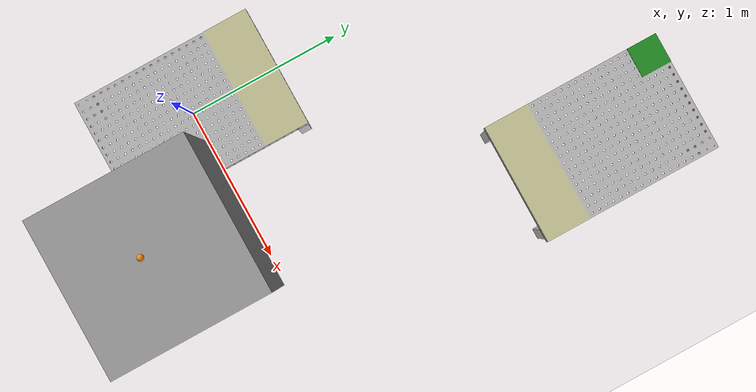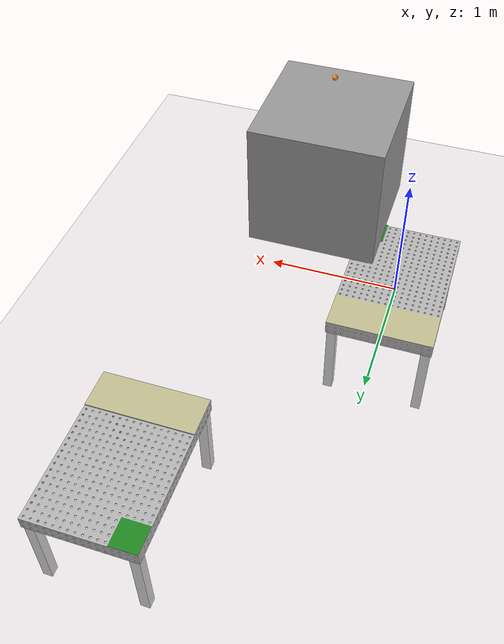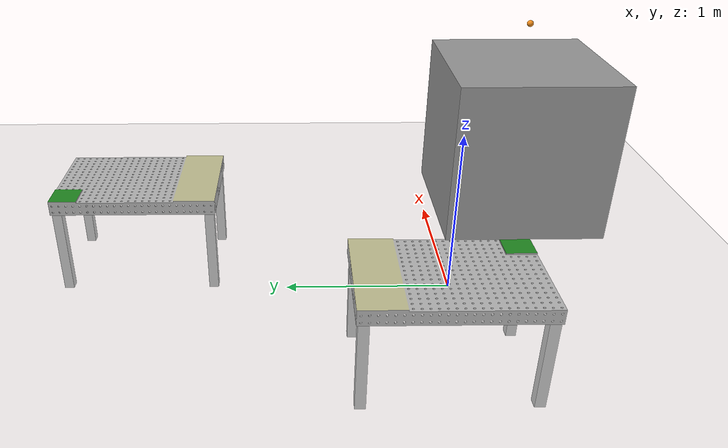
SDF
<sdf version="1.4">
 <world name="default">
  <model name="ground_plane">
   <static>1</static>
   <link name="link">
    <collision name="collision">
     <geometry><plane><normal>0 0 1</normal><size>100 100</size></plane></geometry>
     <surface><friction><ode><mu>100</mu><mu2>50</mu2></ode></friction></surface>
    </collision>
    <visual name="visual">
     <cast_shadows>0</cast_shadows>
     <geometry><plane><normal>0 0 1</normal><size>100 100</size></plane></geometry>
     <material>
      <script><uri>file://media/materials/scripts/gazebo.material</uri><name>Gazebo/Grey</name></script>
     </material>
    </visual>
   </link>
  </model>
  <light name="sun" type="directional">
   <pose>0 0 10 0 -0 0</pose>
   <diffuse>0.8 0.8 0.8 1</diffuse>
   <specular>0.1 0.1 0.1 1</specular>
   <attenuation>
    <range>1000</range>
    <constant>0.9</constant>
    <linear>0.01</linear>
    <quadratic>0.001</quadratic>
   </attenuation>
   <direction>-0.5 0.5 -1</direction>
  </light>
  <model name="ping_pang_table">
   <static>1</static>
   <link name="table">
    <gravity>0</gravity>
    <visual name="visual1">
     <geometry>
      <mesh><uri>file:///home/yangqingyan/.gazebo/models/table/table.dae</uri><scale>1 1 1</scale></mesh>
     </geometry>
    </visual>
    <collision name="collision1">
     <geometry>
      <mesh><uri>file:///home/yangqingyan/.gazebo/models/table/table.dae</uri><scale>1 1 1</scale></mesh>
     </geometry>
    </collision>
   </link>
  </model>
  <model name="ping_pang_table_1">
   <static>1</static>
   <link name="table">
    <gravity>0</gravity>
    <visual name="visual1">
     <geometry>
      <mesh><uri>file:///home/yangqingyan/.gazebo/models/table/table.dae</uri><scale>1 1 1</scale></mesh>
     </geometry>
    </visual>
    <collision name="collision1">
     <geometry>
      <mesh><uri>file:///home/yangqingyan/.gazebo/models/table/table.dae</uri><scale>1 1 1</scale></mesh>
     </geometry>
    </collision>
   </link>
   <pose>1.35 2.13 0 0 -0 3.14159</pose>
  </model>
  <model name="ping_pang_ball">
   <static>0</static>
   <link name="ball">
    <inertial>
     <mass>0.0027</mass>
     <inertia>
      <ixx>2.37e-08</ixx>
      <iyy>2.37e-08</iyy>
      <izz>2.37e-08</izz>
      <ixy>0</ixy>
      <ixz>0</ixz>
      <iyz>0</iyz>
     </inertia>
    </inertial>
    <collision name="collision">
     <geometry><sphere><radius>0.02</radius></sphere></geometry>
     <surface>
      <bounce><restitution_coefficient>100</restitution_coefficient><threshold>0.01</threshold></bounce>
      <contact><ode><max_vel>500</max_vel></ode></contact>
     </surface>
    </collision>
    <visual name="visual">
     <geometry><sphere><radius>0.02</radius></sphere></geometry>
     <material>
      <script><uri>file://media/materials/scripts/gazebo.material</uri><name>Gazebo/Orange</name></script>
     </material>
    </visual>
   </link>
   <pose>0.7 -0.500012 1.44783 0.074794 0.001111 -3.14155</pose>
  </model>
  <gravity>0 0 -9.8</gravity>
  <magnetic_field>6e-06 2.3e-05 -4.2e-05</magnetic_field>
  <atmosphere type="adiabatic"/>
  <physics name="default_physics" default="0" type="ode">
   <max_step_size>0.001</max_step_size>
   <real_time_factor>1</real_time_factor>
   <real_time_update_rate>1000</real_time_update_rate>
  </physics>
  <scene><ambient>0.4 0.4 0.4 1</ambient><background>0.7 0.7 0.7 1</background><shadows>1</shadows></scene>
  <spherical_coordinates>
   <surface_model>EARTH_WGS84</surface_model>
   <latitude_deg>0</latitude_deg>
   <longitude_deg>0</longitude_deg>
   <elevation>0</elevation>
   <heading_deg>0</heading_deg>
  </spherical_coordinates>
  <model name="unit_box_0">
   <pose>0.700002 -0.500073 0.71392 -2e-06 -0 0.000214</pose>
   <link name="link">
    <inertial>
     <mass>1</mass>
     <inertia>
      <ixx>0.166667</ixx>
      <ixy>0</ixy>
      <ixz>0</ixz>
      <iyy>0.166667</iyy>
      <iyz>0</iyz>
      <izz>0.166667</izz>
     </inertia>
    </inertial>
    <collision name="collision"><geometry><box><size>1 0.999997 1</size></box></geometry></collision>
    <visual name="visual">
     <geometry><box><size>1 0.999997 1</size></box></geometry>
     <material>
      <script><name>Gazebo/Grey</name><uri>file://media/materials/scripts/gazebo.material</uri></script>
     </material>
    </visual>
   </link>
  </model>
 </world>
</sdf>
